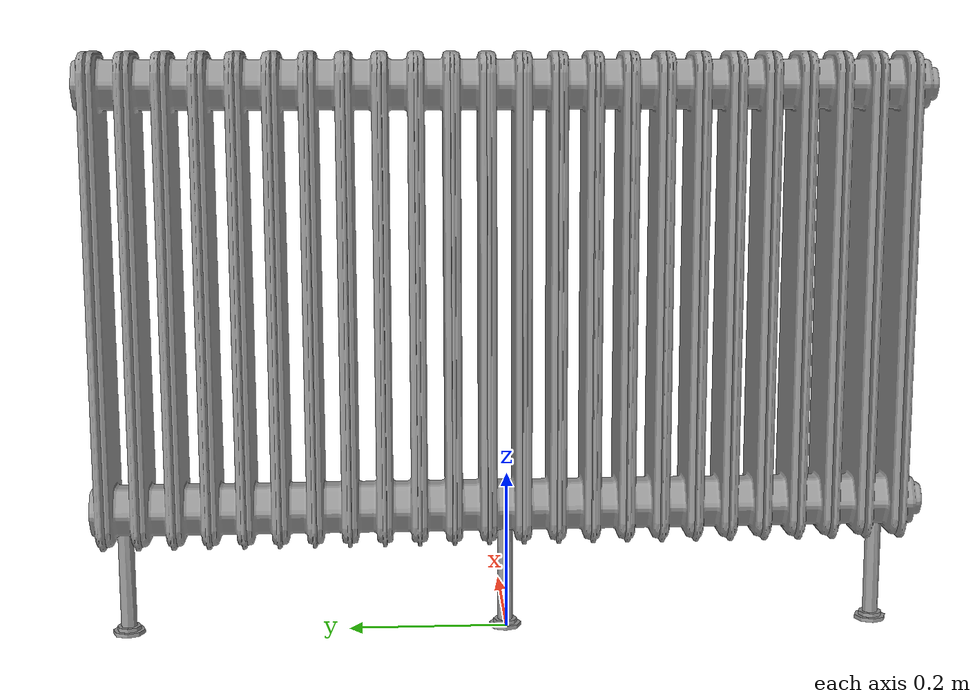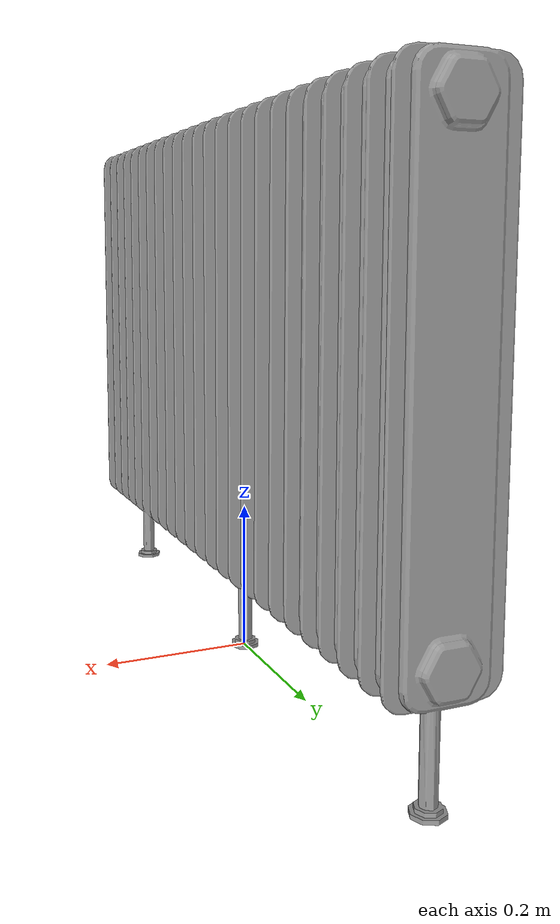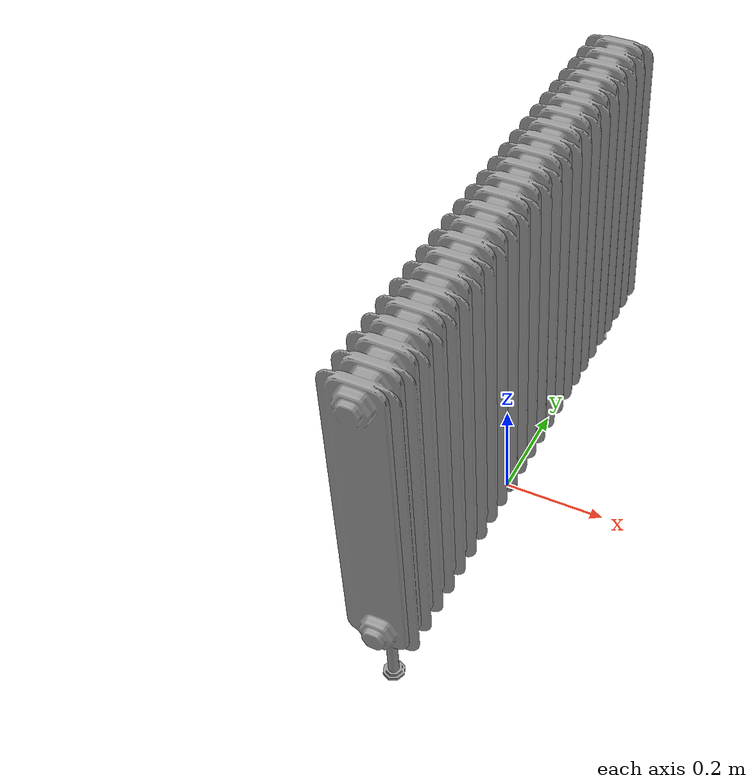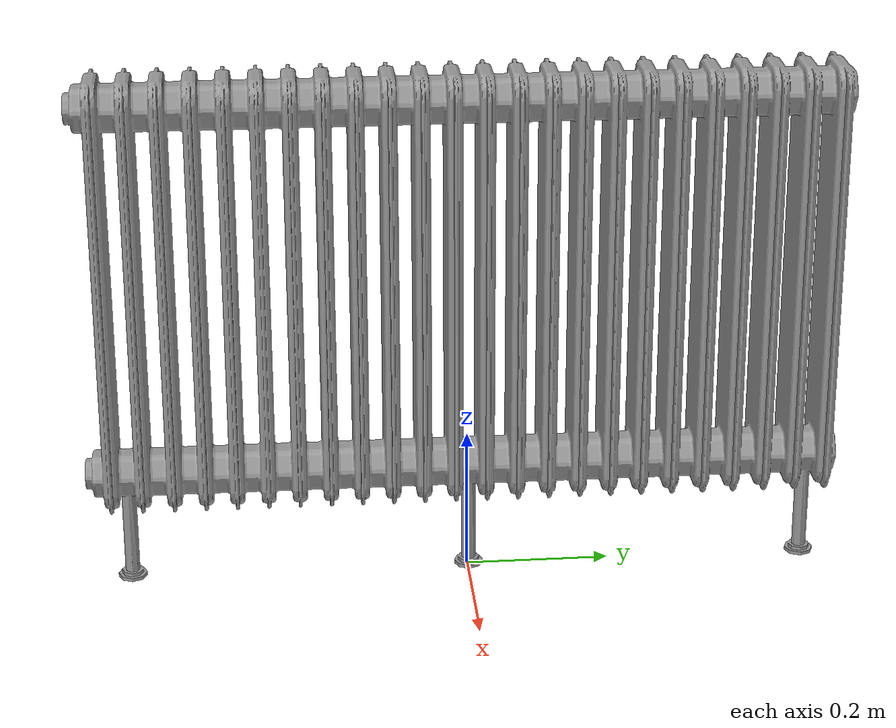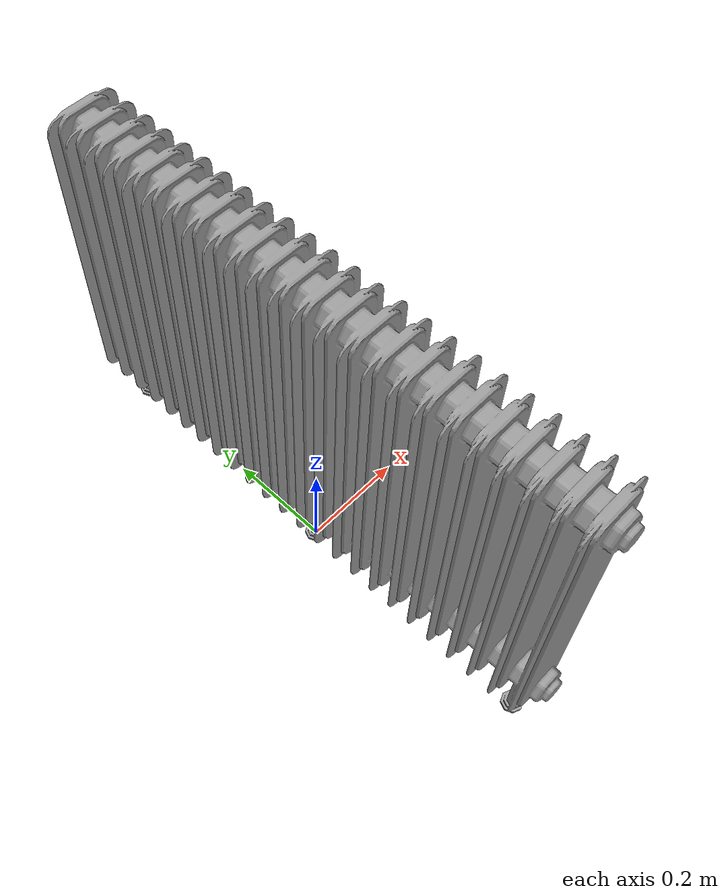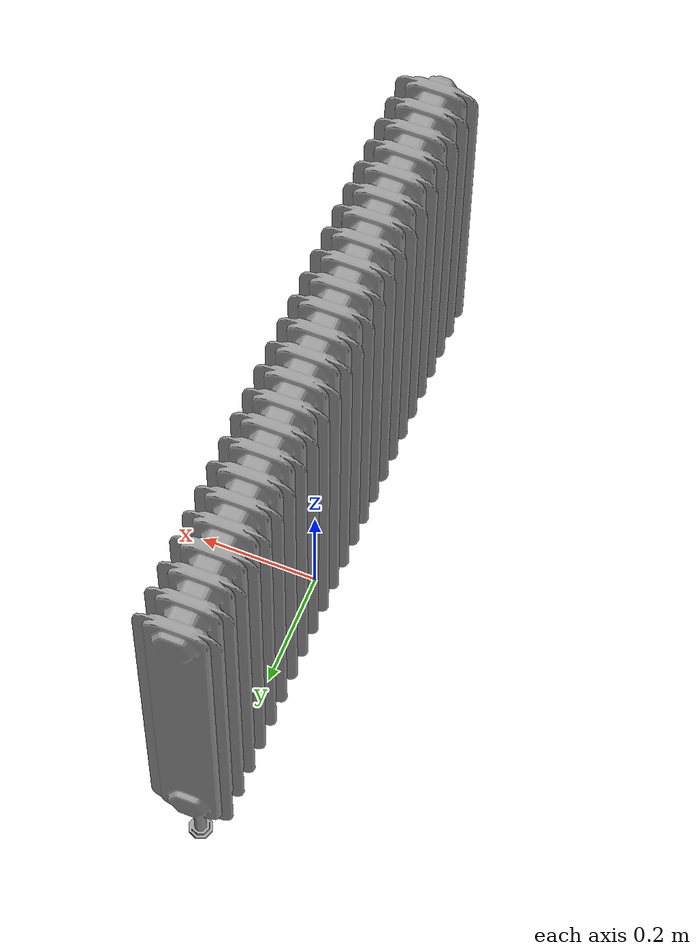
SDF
<?xml version="1.0" ?>
<sdf version="1.5">
  <model name="radiator">
    <static>true</static>
    <link name='defaultModel_0::custom_0'>
      <pose>0 0 0 0 0 0</pose>
      <gravity>1</gravity>
      <self_collide>0</self_collide>
      <kinematic>0</kinematic>
      <visual name='custom_0_visual'>
        <pose>0 0 0 0 0 0</pose>
        <geometry>
          <mesh>
            <uri>model://radiator/radiator.dae</uri>
            <scale>0.001 0.001 0.001</scale>
          </mesh>
        </geometry>
        <material>
          <script>
            <uri>file://media/materials/scripts/gazebo.material</uri>
            <name>Gazebo/Grey</name>
          </script>
        </material>
      </visual>
      <collision name='defaultModel_0::custom_0_collision'>
        <geometry>
          <box>
            <size>0.155 1.05 0.74</size>
          </box>
        </geometry>
        <pose>0 -0.01 0.37 0 0 0</pose>
      </collision>
    </link>
  </model>
</sdf>
